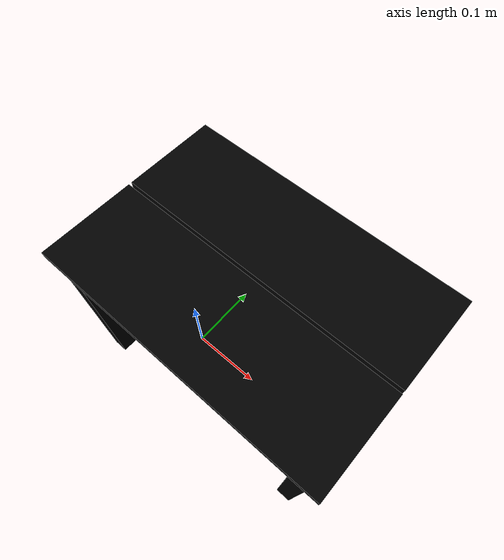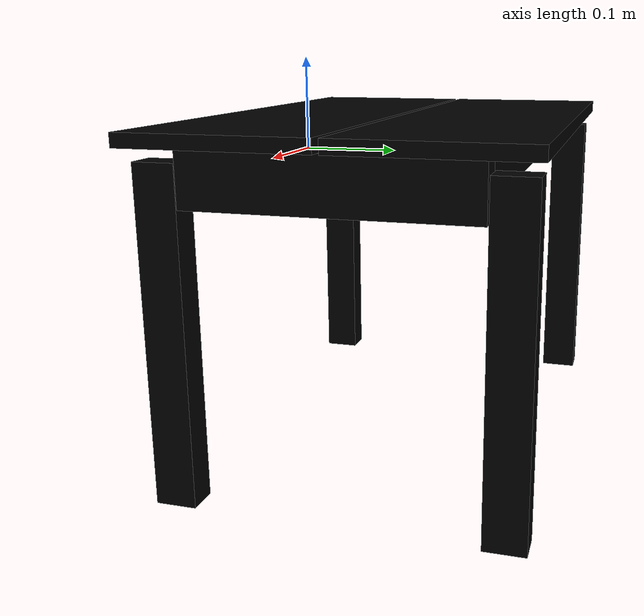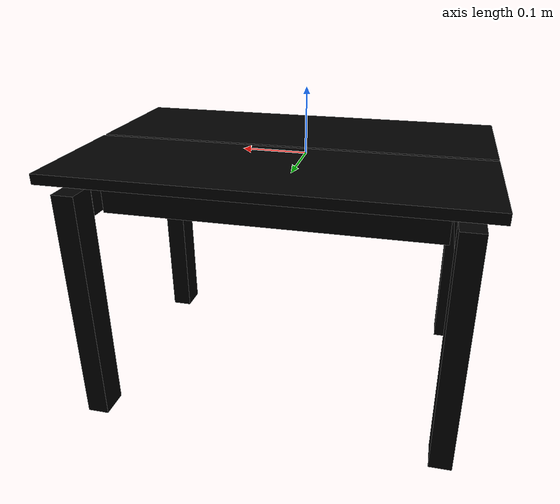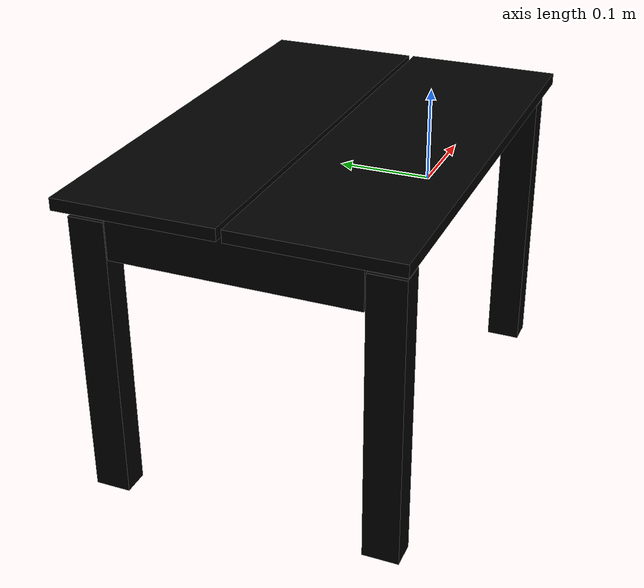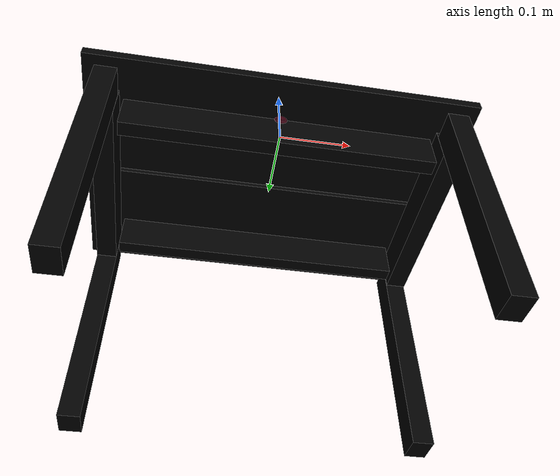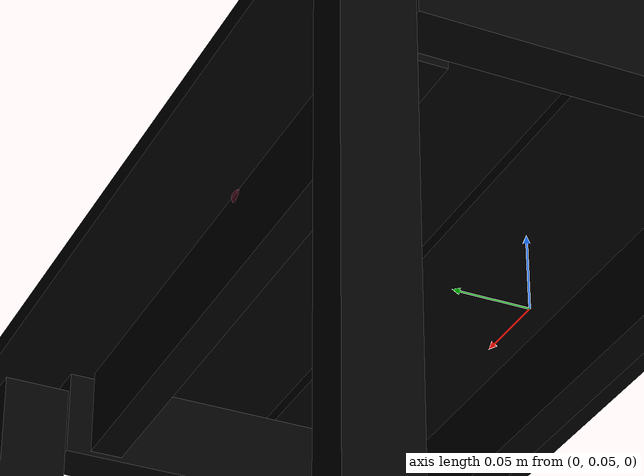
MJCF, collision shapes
<mujoco model="table_liden_0920">
    <custom>
        <numeric data="0.4 0.3 0.027405 0.0 1.0 0.0 0.0" name="0_part0_initpos"/>
        <numeric data="-0.185209 0.125035 0.006726 0.0 -1.0 0 0.0" name="5_part5_initpos"/>
        <numeric data="-0.185924 0.309664 0.006829 0.0 -1.0 0 0.0" name="4_part4_initpos"/>
        <numeric data="-0.450277 -0.090518 0.170664 0.0 0.705513 0.708697 0.0" name="3_part3_initpos"/>
        <numeric data="-0.101199 -0.259353 0.170664 1.6e-05 -0.699554 -0.71458 -1.6e-05" name="2_part2_initpos"/>
        <numeric data="0.399995 0.139968 0.027405 0.0 -1.0 8.8e-05 -0.0" name="1_part1_initpos"/>
    </custom>
    <asset>
        <mesh file="table_liden_0920/0.stl" name="part0" scale="0.00054 0.00054 0.00054"/>
        <mesh file="table_liden_0920/5.stl" name="part5" scale="0.00054 0.00054 0.00054"/>
        <mesh file="table_liden_0920/4.stl" name="part4" scale="0.00054 0.00054 0.00054"/>
        <mesh file="table_liden_0920/3.stl" name="part3" scale="0.00054 0.00054 0.00054"/>
        <mesh file="table_liden_0920/2.stl" name="part2" scale="0.00054 0.00054 0.00054"/>
        <mesh file="table_liden_0920/1.stl" name="part1" scale="0.00054 0.00054 0.00054"/>
    </asset>
    <equality>
        <weld active="false" body1="0_part0" body2="4_part4" solimp="1 1 0.5" solref="0.01 0.3"/>
        <weld active="false" body1="1_part1" body2="5_part5" solimp="1 1 0.5" solref="0.01 0.3"/>
        <weld active="false" body1="5_part5" body2="3_part3" solimp="1 1 0.5" solref="0.01 0.3"/>
        <weld active="false" body1="5_part5" body2="2_part2" solimp="1 1 0.5" solref="0.01 0.3"/>
        <weld active="false" body1="0_part0" body2="5_part5" solimp="1 1 0.5" solref="0.01 0.3"/>
        <weld active="false" body1="1_part1" body2="4_part4" solimp="1 1 0.5" solref="0.01 0.3"/>
        <weld active="false" body1="4_part4" body2="2_part2" solimp="1 1 0.5" solref="0.01 0.3"/>
        <weld active="false" body1="4_part4" body2="3_part3" solimp="1 1 0.5" solref="0.01 0.3"/>
    </equality>
    <worldbody>
        <body name="0_part0" pos="-0.0 0.0 0.0" quat="1 0 0 0">
            <geom conaffinity="0" contype="0" density="0" mesh="part0" name="0_part0_mesh" pos="0.0 0.0 0.0"
                  rgba="0.82 0.71 0.55 1" type="mesh"/>
            <site group="1" name="0_part0_ltgt_site0" pos="0.0 -0.024 0.0" rgba="0 0 0 0" size="0.012 0.012 0.012"
                  type="sphere"/>
            <site group="1" name="0_part0_rtgt_site0" pos="0.0 0.024 0.0" rgba="0 0 0 0" size="0.012 0.012 0.012"
                  type="sphere"/>
            <site name="0_part0_horizontal_radius_site" pos="-0.0 0.0 0.0" quat="1 0 0 0" rgba="0 0 0 0"
                  size="0.010799999999999999"/>
            <site name="0_part0_top_site" pos="0.0 0.0 0.027432" quat="1 0 0 0" rgba="0 0 0 0"
                  size="0.010799999999999999"/>
            <site name="0_part0_bottom_site" pos="0.0 0.0 -0.027432" quat="1 0 0 0" rgba="0 0 0 0"
                  size="0.010799999999999999"/>
            <site name="0_part0_corner_site8" pos="-0.222885 0.010287 0.027432" quat="1 0 0 0" rgba="0 0 0 0"
                  size="0.010799999999999999"/>
            <site name="0_part0_corner_site7" pos="0.222885 0.010287 0.027432" quat="1 0 0 0" rgba="0 0 0 0"
                  size="0.010799999999999999"/>
            <site name="0_part0_corner_site6" pos="0.222885 -0.010287 0.027432" quat="1 0 0 0" rgba="0 0 0 0"
                  size="0.010799999999999999"/>
            <site name="0_part0_corner_site5" pos="-0.222885 -0.010287 0.027432" quat="1 0 0 0" rgba="0 0 0 0"
                  size="0.010799999999999999"/>
            <site name="0_part0_corner_site4" pos="-0.222885 0.010287 -0.027432" quat="1 0 0 0" rgba="0 0 0 0"
                  size="0.010799999999999999"/>
            <site name="0_part0_corner_site3" pos="0.222885 0.010287 -0.027432" quat="1 0 0 0" rgba="0 0 0 0"
                  size="0.010799999999999999"/>
            <site name="0_part0_corner_site2" pos="0.222885 -0.010287 -0.027432" quat="1 0 0 0" rgba="0 0 0 0"
                  size="0.010799999999999999"/>
            <site name="0_part0_corner_site1" pos="-0.222885 -0.010287 -0.027432" quat="1 0 0 0" rgba="0 0 0 0"
                  size="0.010799999999999999"/>
            <site name="support-toppanel,0,180,conn_site1" pos="0.0 -0.005399999999999999 0.027648000000000002"
                  quat="1 0 0 0" rgba="0.9019 0.0980 0.2941 0.3" size="0.010799999999999999"/>
            <geom density="50" name="noviz_collision_0_part0_0" pos="0.0 0.00022637339999999998 1.3716000000000001e-06"
                  quat="1 0 0 0" rgba="0 0 0 0" size="0.22 0.0105133734 0.027433371599999996" solref="0.001 1"
                  type="box"/>
        </body>
        <body name="5_part5" pos="-0.0 0.20745452797199998 0.034290006588" quat="1 0 0 0">
            <geom conaffinity="0" contype="0" density="0" mesh="part5" name="5_part5_mesh" pos="0.0 0.0 0.0"
                  rgba="0.82 0.71 0.55 1" type="mesh"/>
            <site name="5_part5_horizontal_radius_site" pos="-0.0 1.674e-09 0.0" quat="1 0 0 0" rgba="0 0 0 0"
                  size="0.010799999999999999"/>
            <site name="5_part5_top_site" pos="0.0 1.674e-09 0.006858006587999999" quat="1 0 0 0" rgba="0 0 0 0"
                  size="0.010799999999999999"/>
            <site name="5_part5_bottom_site" pos="0.0 1.674e-09 -0.006858006587999999" quat="1 0 0 0" rgba="0 0 0 0"
                  size="0.010799999999999999"/>
            <site name="5_part5_corner_site8" pos="-0.27432 0.09086852964599998 0.006858006587999999" quat="1 0 0 0"
                  rgba="0 0 0 0" size="0.010799999999999999"/>
            <site name="5_part5_corner_site7" pos="0.27432 0.09086852964599998 0.006858006587999999" quat="1 0 0 0"
                  rgba="0 0 0 0" size="0.010799999999999999"/>
            <site name="5_part5_corner_site6" pos="0.27432 -0.090868526298 0.006858006587999999" quat="1 0 0 0"
                  rgba="0 0 0 0" size="0.010799999999999999"/>
            <site name="5_part5_corner_site5" pos="-0.27432 -0.090868526298 0.006858006587999999" quat="1 0 0 0"
                  rgba="0 0 0 0" size="0.010799999999999999"/>
            <site name="5_part5_corner_site4" pos="-0.27432 0.09086852964599998 -0.006858006587999999" quat="1 0 0 0"
                  rgba="0 0 0 0" size="0.010799999999999999"/>
            <site name="5_part5_corner_site3" pos="0.27432 0.09086852964599998 -0.006858006587999999" quat="1 0 0 0"
                  rgba="0 0 0 0" size="0.010799999999999999"/>
            <site name="5_part5_corner_site2" pos="0.27432 -0.090868526298 -0.006858006587999999" quat="1 0 0 0"
                  rgba="0 0 0 0" size="0.010799999999999999"/>
            <site name="5_part5_corner_site1" pos="-0.27432 -0.090868526298 -0.006858006587999999" quat="1 0 0 0"
                  rgba="0 0 0 0" size="0.010799999999999999"/>
            <site name="toppanel-support,0,180,conn_site2" pos="0.0 0.019507467599999998 -0.0066420054000000004"
                  quat="1 0 0 0" rgba="0.9019 0.0980 0.2941 0.3" size="0.010799999999999999"/>
            <site name="toppanel-leg,0,180,conn_site3" pos="0.24029999999999996 -0.04714876619999999 -0.0068580054"
                  quat="1 0 0 0" rgba="0.2352 0.7058 0.2941 0.3" size="0.010799999999999999"/>
            <site name="toppanel-leg,0,180,conn_site2" pos="-0.24029999999999996 -0.04714876619999999 -0.0068580054"
                  quat="1 0 0 0" rgba="0.2352 0.7058 0.2941 0.3" size="0.010799999999999999"/>
            <geom density="50" name="noviz_collision_5_part5_0" pos="0.0 -0.00048312719999999993 -5.107319999999999e-05"
                  quat="1 0 0 0" rgba="0 0 0 0" size="0.27432 0.090385416 0.0068069322" solref="0.001 1" type="box"/>
        </body>
        <body name="4_part4" pos="-0.0 0.018859527972 0.034290006588" quat="1 0 0 0">
            <geom conaffinity="0" contype="0" density="0" mesh="part4" name="4_part4_mesh" pos="0.0 0.0 0.0"
                  rgba="0.82 0.71 0.55 1" type="mesh"/>
            <site name="4_part4_horizontal_radius_site" pos="-0.0 1.674e-09 0.0" quat="1 0 0 0" rgba="0 0 0 0"
                  size="0.010799999999999999"/>
            <site name="4_part4_top_site" pos="0.0 1.674e-09 0.006858006587999999" quat="1 0 0 0" rgba="0 0 0 0"
                  size="0.010799999999999999"/>
            <site name="4_part4_bottom_site" pos="0.0 1.674e-09 -0.006858006587999999" quat="1 0 0 0" rgba="0 0 0 0"
                  size="0.010799999999999999"/>
            <site name="4_part4_corner_site8" pos="-0.27432 0.09086852964599998 0.006858006587999999" quat="1 0 0 0"
                  rgba="0 0 0 0" size="0.010799999999999999"/>
            <site name="4_part4_corner_site7" pos="0.27432 0.09086852964599998 0.006858006587999999" quat="1 0 0 0"
                  rgba="0 0 0 0" size="0.010799999999999999"/>
            <site name="4_part4_corner_site6" pos="0.27432 -0.090868526298 0.006858006587999999" quat="1 0 0 0"
                  rgba="0 0 0 0" size="0.010799999999999999"/>
            <site name="4_part4_corner_site5" pos="-0.27432 -0.090868526298 0.006858006587999999" quat="1 0 0 0"
                  rgba="0 0 0 0" size="0.010799999999999999"/>
            <site name="4_part4_corner_site4" pos="-0.27432 0.09086852964599998 -0.006858006587999999" quat="1 0 0 0"
                  rgba="0 0 0 0" size="0.010799999999999999"/>
            <site name="4_part4_corner_site3" pos="0.27432 0.09086852964599998 -0.006858006587999999" quat="1 0 0 0"
                  rgba="0 0 0 0" size="0.010799999999999999"/>
            <site name="4_part4_corner_site2" pos="0.27432 -0.090868526298 -0.006858006587999999" quat="1 0 0 0"
                  rgba="0 0 0 0" size="0.010799999999999999"/>
            <site name="4_part4_corner_site1" pos="-0.27432 -0.090868526298 -0.006858006587999999" quat="1 0 0 0"
                  rgba="0 0 0 0" size="0.010799999999999999"/>
            <site name="toppanel-support,0,180,conn_site1" pos="0.0 -0.024259527 -0.0066420054000000004" quat="1 0 0 0"
                  rgba="0.9019 0.0980 0.2941 0.3" size="0.010799999999999999"/>
            <site name="toppanel-leg,0,180,conn_site4" pos="0.24029999999999996 0.0471487338 -0.0068580054"
                  quat="1 0 0 0" rgba="0.2352 0.7058 0.2941 0.3" size="0.010799999999999999"/>
            <site name="toppanel-leg,0,180,conn_site1" pos="-0.24029999999999996 0.0471487338 -0.0068580054"
                  quat="1 0 0 0" rgba="0.2352 0.7058 0.2941 0.3" size="0.010799999999999999"/>
            <geom density="50" name="noviz_collision_4_part4_0" pos="0.0 0.0004830732 -5.107319999999999e-05"
                  quat="1 0 0 0" rgba="0 0 0 0" size="0.27432 0.091351584 0.0068069322" solref="0.001 1" type="box"/>
        </body>
        <body name="3_part3" pos="-0.24003 0.113156996652 -0.14401799999999998" quat="1 0 0 0">
            <geom conaffinity="0" contype="0" density="0" mesh="part3" name="3_part3_mesh" pos="0.0 0.0 0.0"
                  rgba="0.82 0.71 0.55 1" type="mesh"/>
            <site group="1" name="3_part3_ltgt_site0" pos="-0.02 0.047 0.15" rgba="0 0 0 0" size="0.012 0.012 0.012"
                  type="sphere"/>
            <site group="1" name="3_part3_rtgt_site0" pos="0.02 0.047 0.15" rgba="0 0 0 0" size="0.012 0.012 0.012"
                  type="sphere"/>
            <site name="3_part3_horizontal_radius_site" pos="0.0 -3.24e-09 0.0" quat="1 0 0 0" rgba="0 0 0 0"
                  size="0.010799999999999999"/>
            <site name="3_part3_top_site" pos="0.0 -3.24e-09 0.17145" quat="1 0 0 0" rgba="0 0 0 0"
                  size="0.010799999999999999"/>
            <site name="3_part3_bottom_site" pos="0.0 -3.24e-09 -0.17145" quat="1 0 0 0" rgba="0 0 0 0"
                  size="0.010799999999999999"/>
            <site name="3_part3_corner_site8" pos="-0.017145 0.17830800010799996 0.17145" quat="1 0 0 0" rgba="0 0 0 0"
                  size="0.010799999999999999"/>
            <site name="3_part3_corner_site7" pos="0.017145 0.17830800010799996 0.17145" quat="1 0 0 0" rgba="0 0 0 0"
                  size="0.010799999999999999"/>
            <site name="3_part3_corner_site6" pos="0.017145 -0.178308006588 0.17145" quat="1 0 0 0" rgba="0 0 0 0"
                  size="0.010799999999999999"/>
            <site name="3_part3_corner_site5" pos="-0.017145 -0.178308006588 0.17145" quat="1 0 0 0" rgba="0 0 0 0"
                  size="0.010799999999999999"/>
            <site name="3_part3_corner_site4" pos="-0.017145 0.17830800010799996 -0.17145" quat="1 0 0 0" rgba="0 0 0 0"
                  size="0.010799999999999999"/>
            <site name="3_part3_corner_site3" pos="0.017145 0.17830800010799996 -0.17145" quat="1 0 0 0" rgba="0 0 0 0"
                  size="0.010799999999999999"/>
            <site name="3_part3_corner_site2" pos="0.017145 -0.178308006588 -0.17145" quat="1 0 0 0" rgba="0 0 0 0"
                  size="0.010799999999999999"/>
            <site name="3_part3_corner_site1" pos="-0.017145 -0.178308006588 -0.17145" quat="1 0 0 0" rgba="0 0 0 0"
                  size="0.010799999999999999"/>
            <site name="leg-toppanel,0,180,conn_site2" pos="-0.00027 0.04714876619999999 0.17145" quat="1 0 0 0"
                  rgba="0.2352 0.7058 0.2941 0.3" size="0.010799999999999999"/>
            <site name="leg-toppanel,0,180,conn_site1" pos="-0.00027 -0.0471487338 0.17145" quat="1 0 0 0"
                  rgba="0.2352 0.7058 0.2941 0.3" size="0.010799999999999999"/>
            <geom density="50" name="noviz_collision_3_part3_0" pos="-0.00027 0.0 0.14369400000000002" quat="1 0 0 0"
                  rgba="0 0 0 0" size="0.015 0.13662 0.027" solref="0.001 1" type="box"/>
            <geom density="50" name="noviz_collision_3_part3_1" pos="-0.00027 -0.157977 -0.0068579892" quat="1 0 0 0"
                  rgba="0 0 0 0" size="0.015 0.02025 0.1647" solref="0.001 1" type="box"/>
            <geom density="50" name="noviz_collision_3_part3_2" pos="-0.00027 0.15808499999999998 -0.0068579892"
                  quat="1 0 0 0" rgba="0 0 0 0" size="0.015 0.02025 0.1647" solref="0.001 1" type="box"/>
        </body>
        <body name="2_part2" pos="0.24003 0.113156996652 -0.14401799999999998" quat="1 0 0 0">
            <geom conaffinity="0" contype="0" density="0" mesh="part2" name="2_part2_mesh" pos="0.0 0.0 0.0"
                  rgba="0.82 0.71 0.55 1" type="mesh"/>
            <site group="1" name="2_part2_ltgt_site0" pos="-0.02 0.047 0.15" rgba="0 0 0 0" size="0.012 0.012 0.012"
                  type="sphere"/>
            <site group="1" name="2_part2_rtgt_site0" pos="0.02 0.047 0.15" rgba="0 0 0 0" size="0.012 0.012 0.012"
                  type="sphere"/>
            <site name="2_part2_horizontal_radius_site" pos="0.0 -3.24e-09 0.0" quat="1 0 0 0" rgba="0 0 0 0"
                  size="0.010799999999999999"/>
            <site name="2_part2_top_site" pos="0.0 -3.24e-09 0.17145" quat="1 0 0 0" rgba="0 0 0 0"
                  size="0.010799999999999999"/>
            <site name="2_part2_bottom_site" pos="0.0 -3.24e-09 -0.17145" quat="1 0 0 0" rgba="0 0 0 0"
                  size="0.010799999999999999"/>
            <site name="2_part2_corner_site8" pos="-0.017145 0.17830800010799996 0.17145" quat="1 0 0 0" rgba="0 0 0 0"
                  size="0.010799999999999999"/>
            <site name="2_part2_corner_site7" pos="0.017145 0.17830800010799996 0.17145" quat="1 0 0 0" rgba="0 0 0 0"
                  size="0.010799999999999999"/>
            <site name="2_part2_corner_site6" pos="0.017145 -0.178308006588 0.17145" quat="1 0 0 0" rgba="0 0 0 0"
                  size="0.010799999999999999"/>
            <site name="2_part2_corner_site5" pos="-0.017145 -0.178308006588 0.17145" quat="1 0 0 0" rgba="0 0 0 0"
                  size="0.010799999999999999"/>
            <site name="2_part2_corner_site4" pos="-0.017145 0.17830800010799996 -0.17145" quat="1 0 0 0" rgba="0 0 0 0"
                  size="0.010799999999999999"/>
            <site name="2_part2_corner_site3" pos="0.017145 0.17830800010799996 -0.17145" quat="1 0 0 0" rgba="0 0 0 0"
                  size="0.010799999999999999"/>
            <site name="2_part2_corner_site2" pos="0.017145 -0.178308006588 -0.17145" quat="1 0 0 0" rgba="0 0 0 0"
                  size="0.010799999999999999"/>
            <site name="2_part2_corner_site1" pos="-0.017145 -0.178308006588 -0.17145" quat="1 0 0 0" rgba="0 0 0 0"
                  size="0.010799999999999999"/>
            <site name="leg-toppanel,0,180,conn_site4" pos="0.00027 -0.0471487338 0.17145" quat="1 0 0 0"
                  rgba="0.2352 0.7058 0.2941 0.3" size="0.010799999999999999"/>
            <site name="leg-toppanel,0,180,conn_site3" pos="0.00027 0.04714876619999999 0.17145" quat="1 0 0 0"
                  rgba="0.2352 0.7058 0.2941 0.3" size="0.010799999999999999"/>
            <geom density="50" name="noviz_collision_2_part2_0" pos="0.0004319946 0.0 0.14369400000000002"
                  quat="1 0 0 0" rgba="0 0 0 0" size="0.015 0.13662 0.027" solref="0.001 1" type="box"/>
            <geom density="50" name="noviz_collision_2_part2_1" pos="-8.69616e-05 -0.157977 -0.0068579892"
                  quat="1 0 0 0" rgba="0 0 0 0" size="0.015 0.02025 0.1647" solref="0.001 1" type="box"/>
            <geom density="50" name="noviz_collision_2_part2_2" pos="-8.69616e-05 0.15808499999999998 -0.0068579892"
                  quat="1 0 0 0" rgba="0 0 0 0" size="0.015 0.02025 0.1647" solref="0.001 1" type="box"/>
        </body>
        <body name="1_part1" pos="-0.0 0.226313999838 0.0" quat="1 0 0 0">
            <geom conaffinity="0" contype="0" density="0" mesh="part1" name="1_part1_mesh" pos="0.0 0.0 0.0"
                  rgba="0.82 0.71 0.55 1" type="mesh"/>
            <site group="1" name="1_part1_ltgt_site0" pos="0.0 -0.024 0.0" rgba="0 0 0 0" size="0.012 0.012 0.012"
                  type="sphere"/>
            <site group="1" name="1_part1_rtgt_site0" pos="0.0 0.024 0.0" rgba="0 0 0 0" size="0.012 0.012 0.012"
                  type="sphere"/>
            <site name="1_part1_horizontal_radius_site" pos="-0.0 0.0 0.0" quat="1 0 0 0" rgba="0 0 0 0"
                  size="0.010799999999999999"/>
            <site name="1_part1_top_site" pos="0.0 0.0 0.027432" quat="1 0 0 0" rgba="0 0 0 0"
                  size="0.010799999999999999"/>
            <site name="1_part1_bottom_site" pos="0.0 0.0 -0.027432" quat="1 0 0 0" rgba="0 0 0 0"
                  size="0.010799999999999999"/>
            <site name="1_part1_corner_site8" pos="-0.222885 0.010287026351999998 0.027432" quat="1 0 0 0"
                  rgba="0 0 0 0" size="0.010799999999999999"/>
            <site name="1_part1_corner_site7" pos="0.222885 0.010287026351999998 0.027432" quat="1 0 0 0" rgba="0 0 0 0"
                  size="0.010799999999999999"/>
            <site name="1_part1_corner_site6" pos="0.222885 -0.010287026351999998 0.027432" quat="1 0 0 0"
                  rgba="0 0 0 0" size="0.010799999999999999"/>
            <site name="1_part1_corner_site5" pos="-0.222885 -0.010287026351999998 0.027432" quat="1 0 0 0"
                  rgba="0 0 0 0" size="0.010799999999999999"/>
            <site name="1_part1_corner_site4" pos="-0.222885 0.010287026351999998 -0.027432" quat="1 0 0 0"
                  rgba="0 0 0 0" size="0.010799999999999999"/>
            <site name="1_part1_corner_site3" pos="0.222885 0.010287026351999998 -0.027432" quat="1 0 0 0"
                  rgba="0 0 0 0" size="0.010799999999999999"/>
            <site name="1_part1_corner_site2" pos="0.222885 -0.010287026351999998 -0.027432" quat="1 0 0 0"
                  rgba="0 0 0 0" size="0.010799999999999999"/>
            <site name="1_part1_corner_site1" pos="-0.222885 -0.010287026351999998 -0.027432" quat="1 0 0 0"
                  rgba="0 0 0 0" size="0.010799999999999999"/>
            <site name="support-toppanel,0,180,conn_site2" pos="0.0 0.0006479891999999999 0.027648000000000002"
                  quat="1 0 0 0" rgba="0.9019 0.0980 0.2941 0.3" size="0.010799999999999999"/>
            <geom density="50" name="noviz_collision_1_part1_0" pos="0.0 -0.0002263788 1.3716000000000001e-06"
                  quat="1 0 0 0" rgba="0 0 0 0" size="0.22 0.0100606482 0.027433371599999996" solref="0.001 1"
                  type="box"/>
        </body>
    </worldbody>
    <actuator/>
    <sensor/>
    <contact/>
    <default/>
</mujoco>
